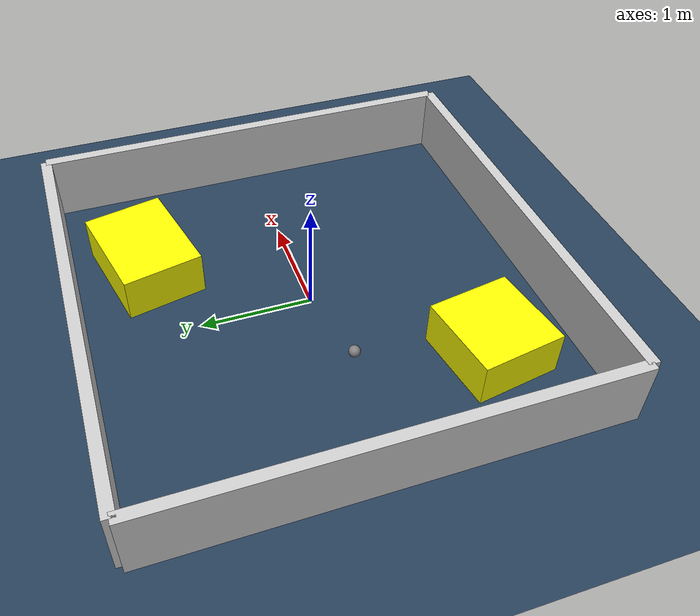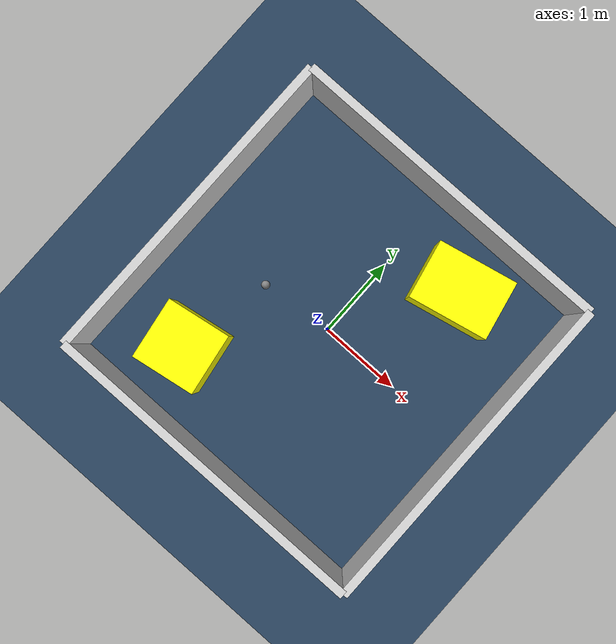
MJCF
<?xml version="1.0" ?>
<mujoco model="generated_environment">
  <option timestep="0.01" integrator="RK4" cone="elliptic"/>
  <default>
    <geom density="1"/>
  </default>
  <asset>
    <texture builtin="gradient" height="3072" rgb1="0.3 0.5 0.7" rgb2="0 0 0" type="skybox" width="512"/>
    <texture builtin="checker" height="300" mark="edge" markrgb="0.8 0.8 0.8" name="groundplane" rgb1="0.2 0.3 0.4" rgb2="0.1 0.2 0.3" type="2d" width="300"/>
    <material name="groundplane" reflectance="0.2" texrepeat="5 5" texture="groundplane" texuniform="true"/>
    <material name="robot" rgba="0.0 1.0 0.0 1"/>
  </asset>
  <worldbody>
    <light dir="0 0 -1" directional="true" pos="0 0 1.5"/>
    <geom condim="4" friction="1.0 0.005 0.001" material="groundplane" name="floor" size="0 0 0.05" type="plane"/>
    <body name="walls">
      <geom name="wall_1" condim="4" pos="-2.0 0.0 0.3" rgba="0.800000011920929 0.800000011920929 0.800000011920929 1.0" size="0.05 2.0 0.3" type="box"/>
      <geom name="wall_2" condim="4" pos="2.0 0.0 0.3" rgba="0.800000011920929 0.800000011920929 0.800000011920929 1.0" size="0.05 2.0 0.3" type="box"/>
      <geom name="wall_3" condim="4" pos="0.0 -2.0 0.3" rgba="0.800000011920929 0.800000011920929 0.800000011920929 1.0" size="2.0 0.05 0.3" type="box"/>
      <geom name="wall_4" condim="4" pos="0.0 2.0 0.3" rgba="0.800000011920929 0.800000011920929 0.800000011920929 1.0" size="2.0 0.05 0.3" type="box"/>
    </body>
    <body name="robot">
      <joint name="joint_x" type="slide" pos="0 0 0" axis="1 0 0"/>
      <joint name="joint_y" type="slide" pos="0 0 0" axis="0 1 0"/>
      <geom name="robot" type="sphere" pos="-0.8559458389040748 -0.08742146592009048 0.2" size="0.05" mass="5." friction="1.0 0.005 0.0001" condim="4"/>
      <site name="sensor_ball"/>
    </body>
    <body name="obstacle_1_movable">
      <geom name="obstacle_1_movable" condim="4" pos="0.8378063720539792 1.3123317537914572 0.2" euler="0 0 192.1953489247309" friction="1.0 0.005 0.001" rgba="1 1 0 1" size="0.484021948028079 0.3596377372676912 0.2" type="box" mass="0.1"/>
      <joint type="free"/>
    </body>
    <body name="obstacle_2_movable">
      <geom name="obstacle_2_movable" condim="4" pos="-1.0791749151181942 -1.2166423016366257 0.2" euler="0 0 9.198998494521371" friction="1.0 0.005 0.001" rgba="1 1 0 1" size="0.38940972437934057 0.37863078438118525 0.2" type="box" mass="0.1"/>
      <joint type="free"/>
    </body>
  </worldbody>
  <actuator>
    <motor name="actuator_x" joint="joint_x" gear="1" ctrlrange="-1 1"/>
    <motor name="actuator_y" joint="joint_y" gear="1" ctrlrange="-1 1"/>
  </actuator>
</mujoco>
